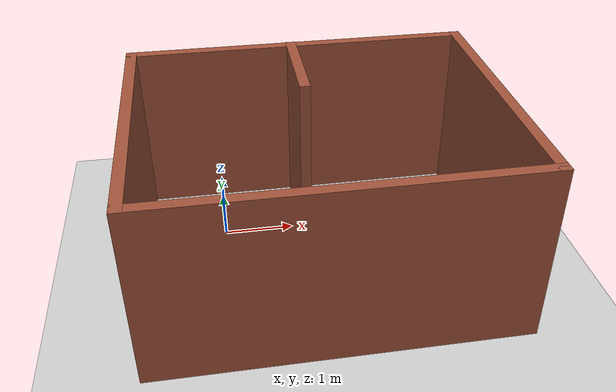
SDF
<?xml version="1.0" ?>
<sdf version="1.7">
  <world name="default">

    <!-- ===== 필수 시스템 플러그인 ===== -->
    <plugin filename="ignition-gazebo-physics-system"
            name="ignition::gazebo::systems::Physics"/>
    <plugin filename="ignition-gazebo-user-commands-system"
            name="ignition::gazebo::systems::UserCommands"/>
    <plugin filename="ignition-gazebo-scene-broadcaster-system"
            name="ignition::gazebo::systems::SceneBroadcaster"/>
    <!-- gpu_lidar 를 위한 센서 시스템. WSL2 에서는 ogre2 가 죽는 경우가 많아 ogre 사용. -->
    <plugin filename="ignition-gazebo-sensors-system"
            name="ignition::gazebo::systems::Sensors">
      <render_engine>ogre</render_engine>
    </plugin>
    <plugin filename="ignition-gazebo-imu-system"
            name="ignition::gazebo::systems::Imu"/>

    <physics name="1ms" type="ode">
      <max_step_size>0.001</max_step_size>
      <real_time_factor>1.0</real_time_factor>
    </physics>

    <scene>
      <ambient>0.4 0.4 0.4 1</ambient>
      <background>0.7 0.7 0.7 1</background>
      <shadows>false</shadows>
    </scene>

    <light name="sun" type="directional">
      <cast_shadows>true</cast_shadows>
      <pose>0 0 10 0 0 0</pose>
      <diffuse>0.8 0.8 0.8 1</diffuse>
      <specular>0.2 0.2 0.2 1</specular>
      <direction>-0.5 0.1 -0.9</direction>
    </light>

    <model name="ground_plane">
      <static>true</static>
      <link name="link">
        <collision name="collision">
          <geometry>
            <plane><normal>0 0 1</normal><size>100 100</size></plane>
          </geometry>
          <surface>
            <friction><ode><mu>100</mu><mu2>50</mu2></ode></friction>
          </surface>
        </collision>
        <visual name="visual">
          <geometry>
            <plane><normal>0 0 1</normal><size>100 100</size></plane>
          </geometry>
          <material>
            <ambient>0.8 0.8 0.8 1</ambient>
            <diffuse>0.8 0.8 0.8 1</diffuse>
          </material>
        </visual>
      </link>
    </model>

    <model name="walls">
      <static>true</static>
      <link name="Wall_0">
        <pose>-1.1292 -0.78188 0 0 0 -1.5708</pose>
        <collision name="collision">
          <pose>0 0 1.25 0 -0 0</pose>
          <geometry><box><size>4 0.15 2.5</size></box></geometry>
        </collision>
        <visual name="visual">
          <pose>0 0 1.25 0 -0 0</pose>
          <geometry><box><size>4 0.15 2.5</size></box></geometry>
          <material><ambient>0.62 0.32 0.22 1</ambient><diffuse>0.62 0.32 0.22 1</diffuse></material>
        </visual>
      </link>
      <link name="Wall_3">
        <pose>1.2958 -2.7069 0 0 -0 0</pose>
        <collision name="collision">
          <pose>0 0 1.25 0 -0 0</pose>
          <geometry><box><size>5 0.15 2.5</size></box></geometry>
        </collision>
        <visual name="visual">
          <pose>0 0 1.25 0 -0 0</pose>
          <geometry><box><size>5 0.15 2.5</size></box></geometry>
          <material><ambient>0.62 0.32 0.22 1</ambient><diffuse>0.62 0.32 0.22 1</diffuse></material>
        </visual>
      </link>
      <link name="Wall_4">
        <pose>3.7208 -0.78188 0 0 -0 1.5708</pose>
        <collision name="collision">
          <pose>0 0 1.25 0 -0 0</pose>
          <geometry><box><size>4 0.15 2.5</size></box></geometry>
        </collision>
        <visual name="visual">
          <pose>0 0 1.25 0 -0 0</pose>
          <geometry><box><size>4 0.15 2.5</size></box></geometry>
          <material><ambient>0.62 0.32 0.22 1</ambient><diffuse>0.62 0.32 0.22 1</diffuse></material>
        </visual>
      </link>
      <link name="Wall_5">
        <pose>1.2958 1.1431 0 0 -0 3.1416</pose>
        <collision name="collision">
          <pose>0 0 1.25 0 -0 0</pose>
          <geometry><box><size>5 0.15 2.5</size></box></geometry>
        </collision>
        <visual name="visual">
          <pose>0 0 1.25 0 -0 0</pose>
          <geometry><box><size>5 0.15 2.5</size></box></geometry>
          <material><ambient>0.62 0.32 0.22 1</ambient><diffuse>0.62 0.32 0.22 1</diffuse></material>
        </visual>
      </link>
      <link name="Wall_7">
        <pose>1.1908 0.47812 0 0 0 -1.5708</pose>
        <collision name="collision">
          <pose>0 0 1.25 0 -0 0</pose>
          <geometry><box><size>1.5 0.15 2.5</size></box></geometry>
        </collision>
        <visual name="visual">
          <pose>0 0 1.25 0 -0 0</pose>
          <geometry><box><size>1.5 0.15 2.5</size></box></geometry>
          <material><ambient>0.62 0.32 0.22 1</ambient><diffuse>0.62 0.32 0.22 1</diffuse></material>
        </visual>
      </link>
    </model>

  </world>
</sdf>
